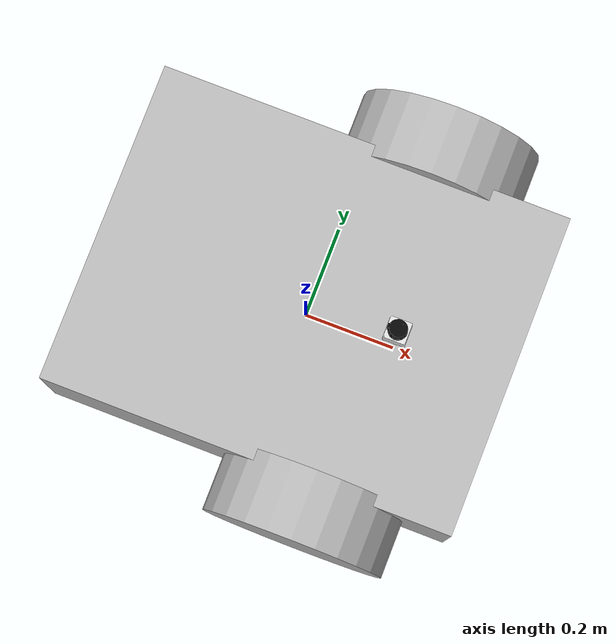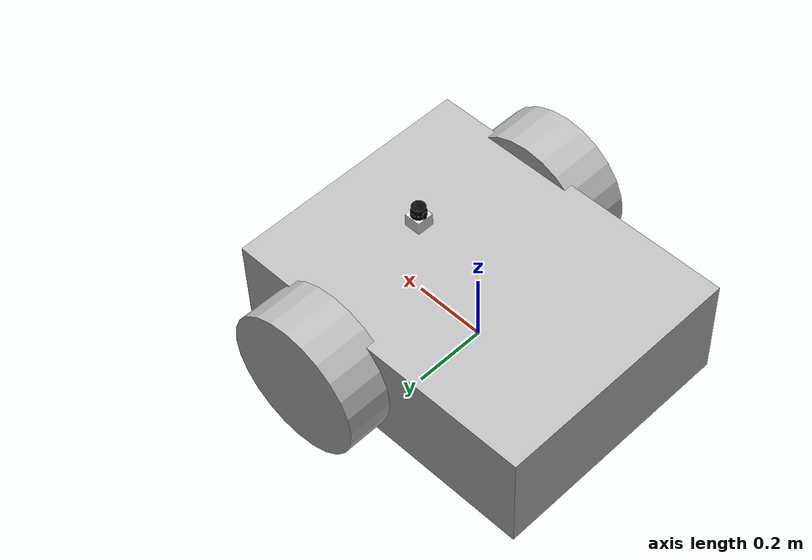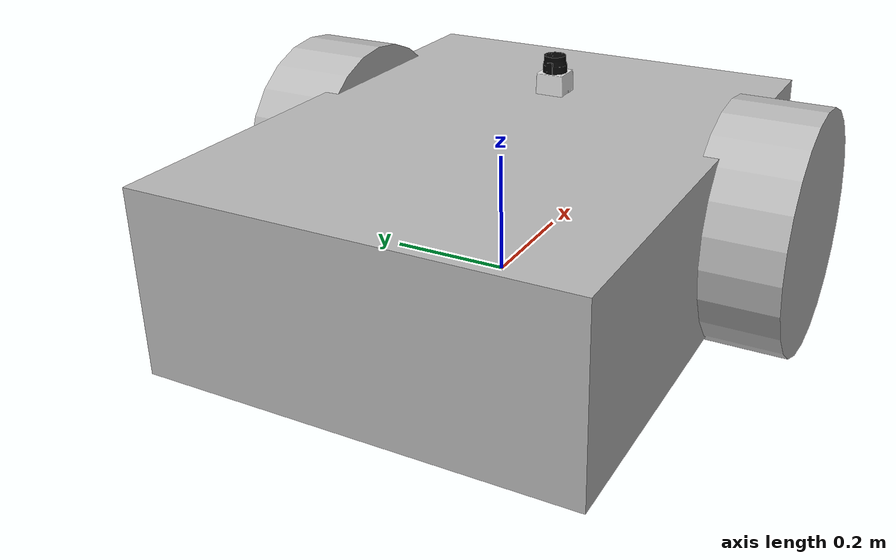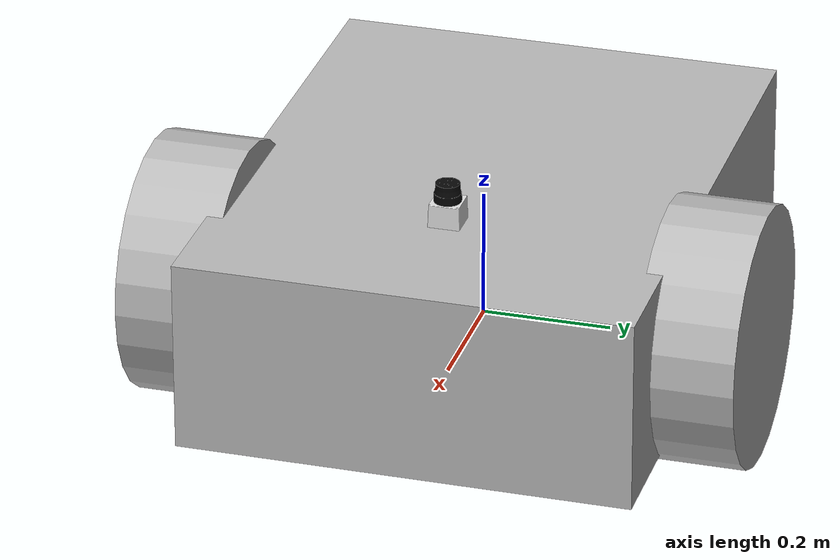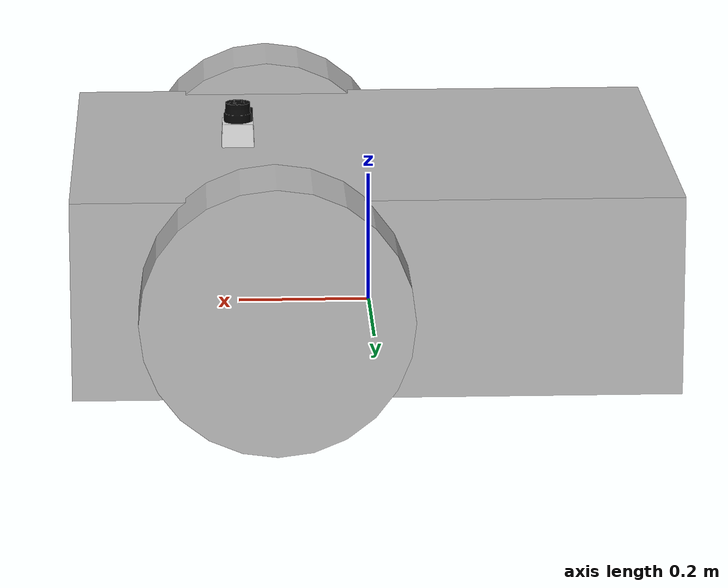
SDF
<?xml version='1.0'?>
<sdf version='1.4'>
  <model name="my_robot">
    <link name='chassis'>
      <pose>0 0 .1 0 0 0</pose>
      <collision name='collision'>
        <geometry>
          <box>
            <size>0.9 0.7 .3</size>
          </box>
        </geometry>
      </collision>
      <visual name='visual'>
        <geometry>
          <box>
            <size>0.9 0.7 .3</size>
          </box>
        </geometry>
      </visual>

      <collision name='caster_collision'>
        <pose>-0.25 0 -0.1 0 0 0</pose>
        <geometry>
          <sphere>
            <radius>.1</radius>
          </sphere>
        </geometry>

        <surface>
          <friction>
            <ode>
              <mu>0</mu>
              <mu2>0</mu2>
              <slip1>1.0</slip1>
              <slip2>1.0</slip2>
            </ode>
          </friction>
        </surface>
      </collision>

      <visual name='caster_visual'>
        <pose>-0.25 0 -0.1 0 0 0</pose>
        <geometry>
          <sphere>
            <radius>.1</radius>
          </sphere>
        </geometry>
      </visual>
    </link>

    <link name="left_wheel">
      <pose>0.15 0.40 0.1 0 1.5707 1.5707</pose>
      <collision name="collision">
        <geometry>
          <cylinder>
            <radius>.2</radius>
            <length>.1</length>
          </cylinder>
        </geometry>
      </collision>
      <visual name="visual">
        <geometry>
          <cylinder>
            <radius>.2</radius>
            <length>.15</length>
          </cylinder>
        </geometry>
      </visual>
    </link>

    <link name="right_wheel">
      <pose>0.15 -0.40 0.1 0 1.5707 1.5707</pose>
      <collision name="collision">
        <geometry>
          <cylinder>
            <radius>.2</radius>
            <length>.1</length>
          </cylinder>
        </geometry>
      </collision>
      <visual name="visual">
        <geometry>
          <cylinder>
            <radius>.2</radius>
            <length>.15</length>
          </cylinder>
        </geometry>
      </visual>
    </link>

    <joint type="revolute" name="left_wheel_hinge">
      <pose>0 0 -0.03 0 0 0</pose>
      <child>left_wheel</child>
      <parent>chassis</parent>
      <axis>
        <xyz>0 1 0</xyz>
      </axis>
    </joint>

    <joint type="revolute" name="right_wheel_hinge">
      <pose>0 0 0.03 0 0 0</pose>
      <child>right_wheel</child>
      <parent>chassis</parent>
      <axis>
        <xyz>0 1 0</xyz>
      </axis>
    </joint>

    <link name="Lidar">
      <pose> 0.2 0 0.28 0 -0 0 </pose>
        <visual name="visual">
          <geometry>
            <mesh>
              <uri>model://hokuyo/meshes/hokuyo.dae</uri>
            </mesh>
          </geometry>
        </visual>
    </link>
    <joint type="fixed" name="Lidar_hinge">
      <pose>0 0 0.03 0 0 0</pose>
      <child>Lidar</child>
      <parent>chassis</parent>
      <axis>
        <xyz>0 0 1</xyz>
      </axis>
    </joint>
  </model>
 </sdf>
